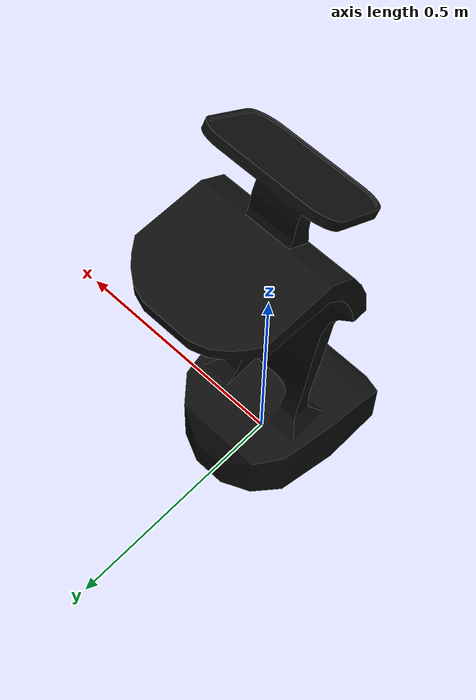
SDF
<?xml version='1.0' encoding='utf-8'?>
<sdf version="1.10">
    <model name="Temi">
        <static>true</static>
        <link name="body">
            <pose>0 0 0 0 0 0</pose>
            <visual name="visual">
                <geometry>
                    <mesh>
                        <uri>model://Temi/meshes/Temi2.dae</uri>
                    </mesh>
                </geometry>
                <material>
                    <ambient>0.05 0.05 0.05 1</ambient>
                    <diffuse>0.05 0.05 0.05 1</diffuse>
                    <specular>0.1 0.1 0.1 1</specular>
                </material>
            </visual>
            <collision name="collision">
                <geometry>
                    <mesh>
                        <uri>model://Temi/meshes/Temi2.dae</uri>
                    </mesh>
                </geometry>
            </collision>
        </link>
    </model>
</sdf>
